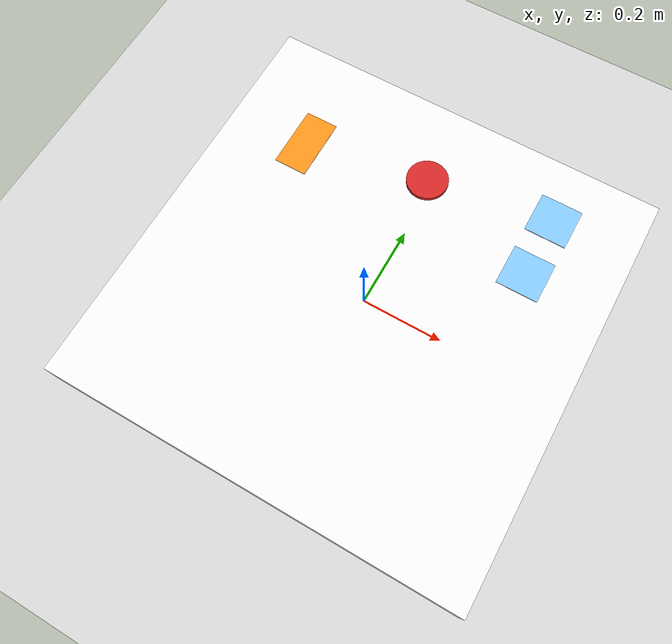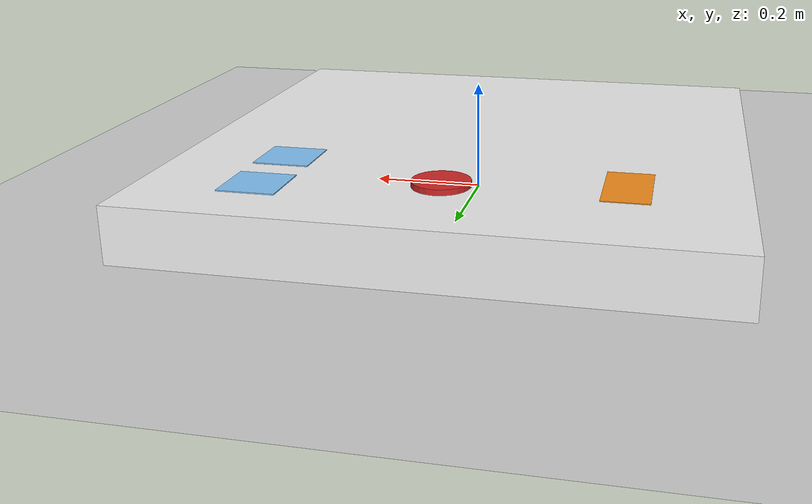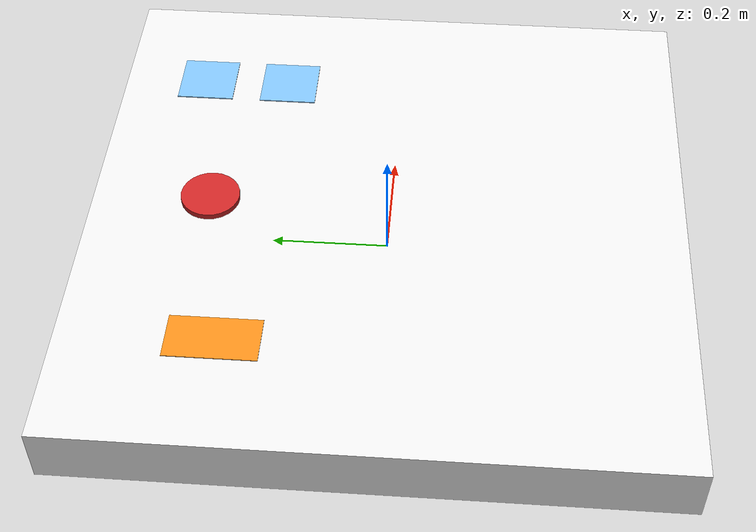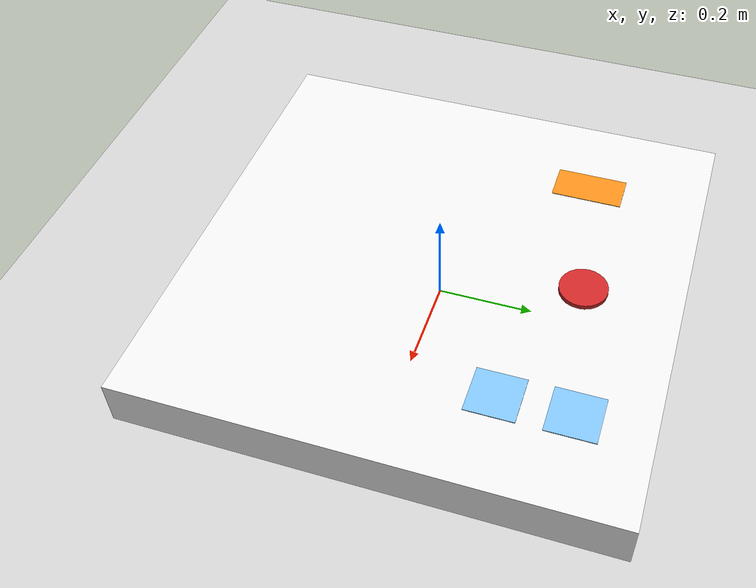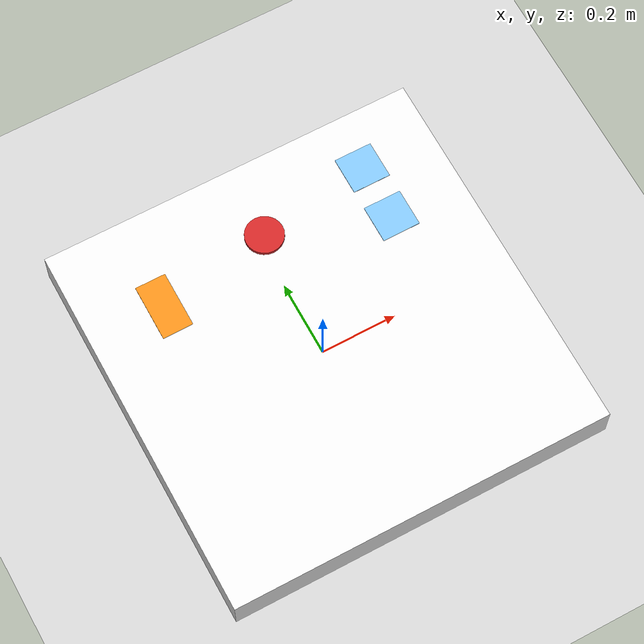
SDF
<?xml version="1.0" ?>
<sdf version="1.7">
  <world name="default">
    <!-- A ground plane -->
    <include>
      <uri>model://ground_plane</uri>
    </include>
    <!-- A global light source -->
    <include>
      <uri>model://sun</uri>
    </include>

    <model name="table">
      <static>true</static>
      <pose>0 0 0.05 0 0 0</pose>
      <link name="link">
        <collision name="collision">
          <geometry>
            <box>
              <size>1 1 0.1</size>
            </box>
          </geometry>
        </collision>
        <visual name="visual">
          <geometry>
            <box>
              <size>1 1 0.1</size>
            </box>
          </geometry>
          <material>
            <script>
              <uri>file://media/materials/scripts/gazebo.material</uri>
              <name>Gazebo/White</name>
            </script>
          </material>
        </visual>
      </link>
    </model>
    <model name="camera_stand">
      <static>true</static>
      <pose>0 0.3 0.105 0 0 0</pose>
      <link name="link">
        <collision name="collision">
          <geometry>
            <cylinder>
              <radius>0.05</radius>
              <length>0.01</length>
            </cylinder>
          </geometry>
        </collision>
        <visual name="visual">
          <geometry>
            <cylinder>
              <radius>0.05</radius>
              <length>0.01</length>
            </cylinder>
          </geometry>
          <material>
            <script>
              <uri>file://media/materials/scripts/gazebo.material</uri>
              <name>Gazebo/Red</name>
            </script>
          </material>
        </visual>
      </link>
    </model>
    <model name="box_1">
      <static>true</static>
      <pose>0.3 0.35 0.101 0 0 0</pose>
      <link name="link">
        <collision name="collision">
          <geometry>
          <box>
		<size>0.1 0.1 0.002</size>
          </box>
          </geometry>
        </collision>
        <visual name="visual">
          <geometry>
          <box>
		<size>0.1 0.1 0.002</size>
          </box>
          </geometry>
          <material>
            <script>
              <uri>file://media/materials/scripts/gazebo.material</uri>
              <name>Gazebo/SkyBlue</name>
            </script>
          </material>
          <meta> <layer> 1 </layer></meta>
        </visual>
      </link>
    </model>
    <model name="box_2">
      <static>true</static>
      <pose>0.3 0.2 0.101 0 0 0</pose>
      <link name="link">
        <collision name="collision">
          <geometry>
          <box>
		<size>0.1 0.1 0.002</size>
          </box>
          </geometry>
        </collision>
        <visual name="visual">
          <geometry>
          <box>
		<size>0.1 0.1 0.002</size>
          </box>
          </geometry>
          <material>
            <script>
              <uri>file://media/materials/scripts/gazebo.material</uri>
              <name>Gazebo/SkyBlue</name>
            </script>
          </material>
          <meta> <layer> 1 </layer></meta>
        </visual>
      </link>
    </model>
    <model name="board">
      <static>true</static>
      <pose>-0.3 0.25 0.10075 0 0 0</pose>
      <link name="link">
        <collision name="collision">
          <geometry>
		<box>
		<size>0.08 0.15 0.0015</size>
		</box>
          </geometry>
        </collision>
        <visual name="visual">
          <geometry>
          <box>
		<size>0.08 0.15 0.0015</size>
          </box>
          </geometry>
          <material>
            <script>
              <uri>file://media/materials/scripts/gazebo.material</uri>
              <name>Gazebo/Orange</name>
            </script>
          </material>
          <meta> <layer> 1 </layer></meta>
        </visual>
      </link>
    </model>
  </world>
</sdf>
